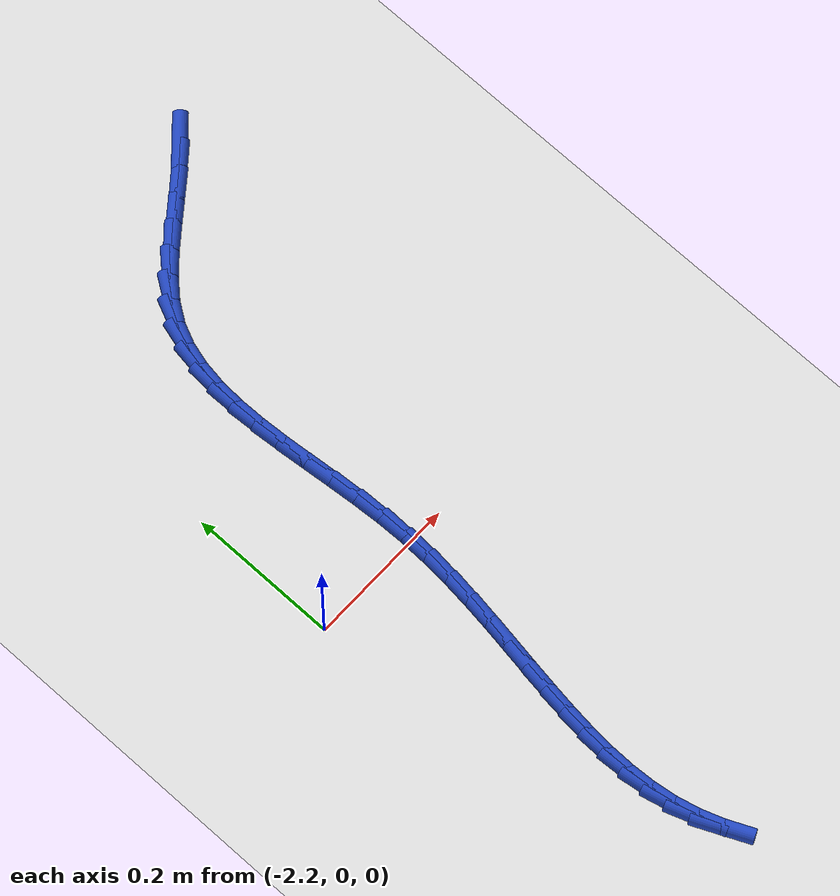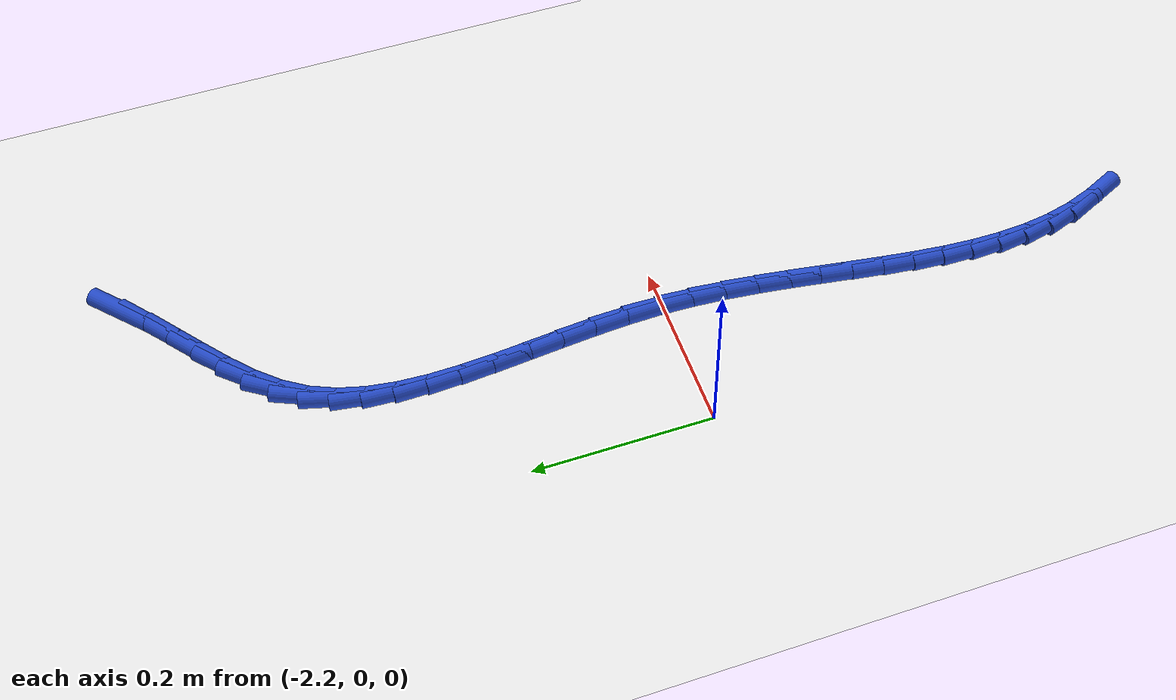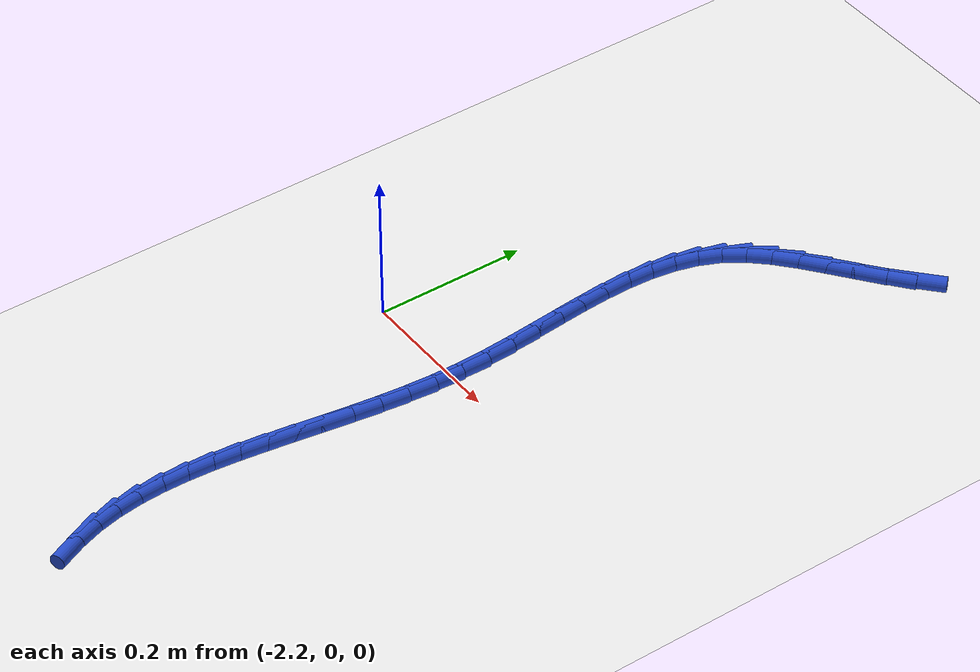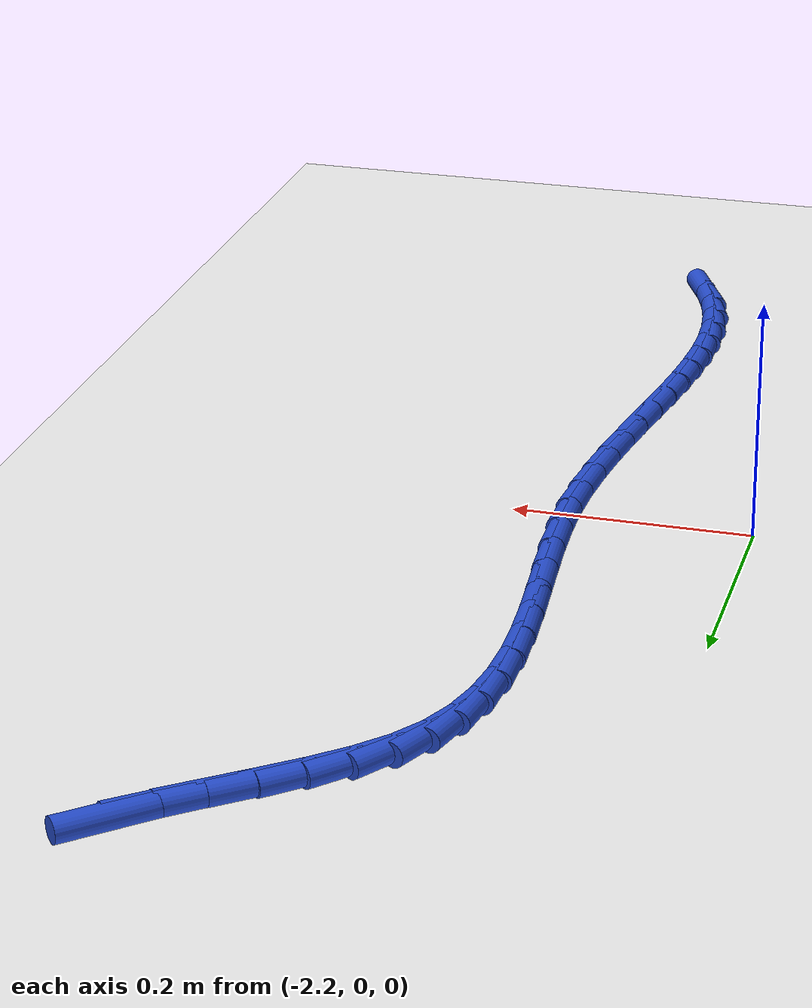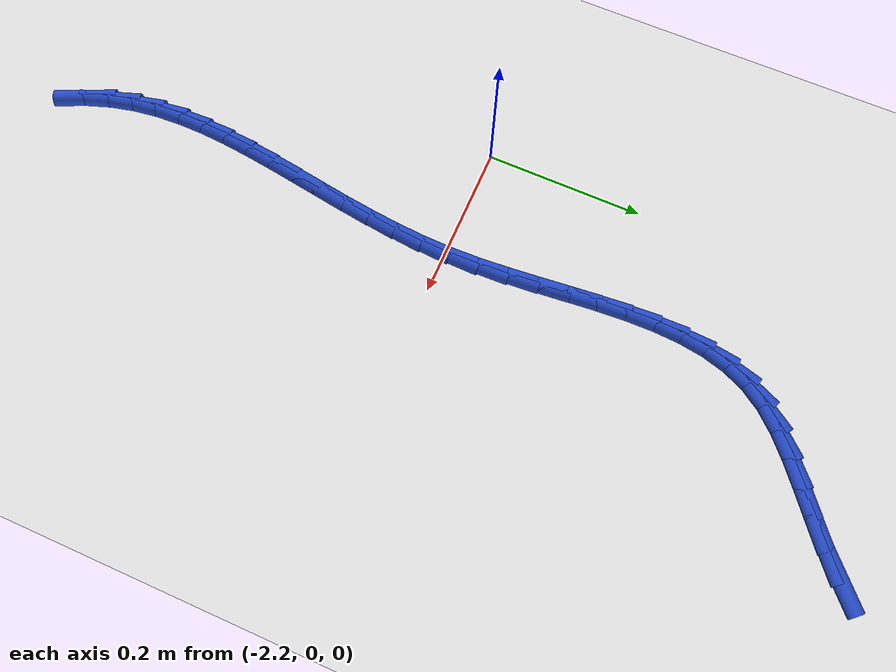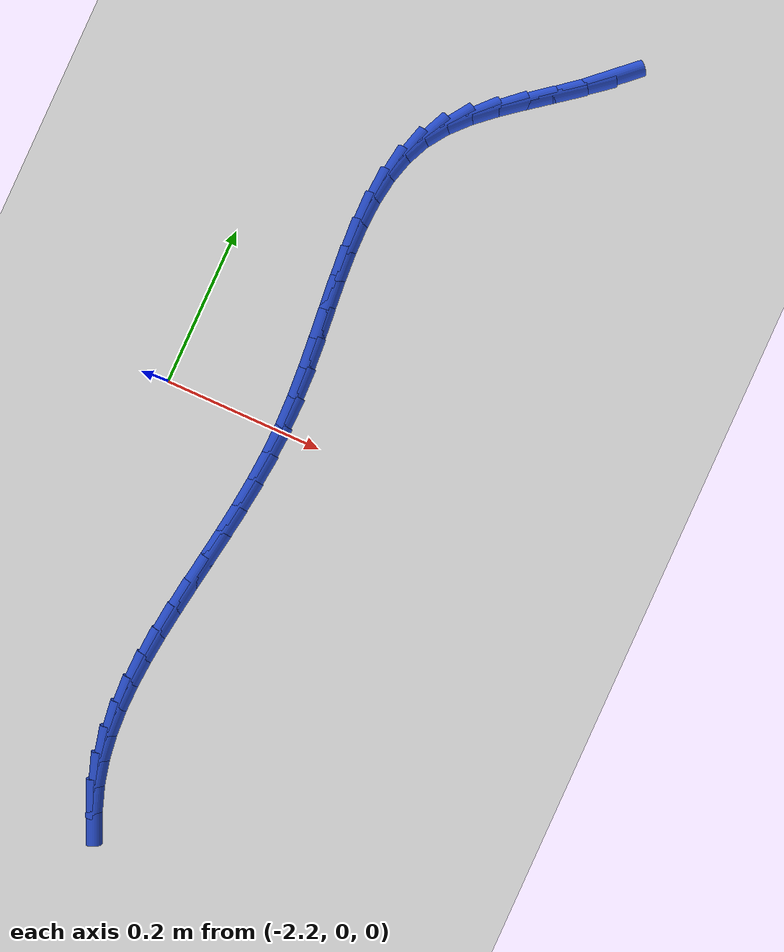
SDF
<sdf version="1.6">
 <world name="default">
  <model name="ground_plane">
   <static>1</static>
   <link name="link">
    <collision name="collision">
     <geometry><plane><normal>0 0 1</normal><size>100 100</size></plane></geometry>
     <surface><friction><ode><mu>100</mu><mu2>50</mu2></ode></friction></surface>
    </collision>
    <visual name="visual">
     <cast_shadows>0</cast_shadows>
     <geometry><plane><normal>0 0 1</normal><size>100 100</size></plane></geometry>
     <material>
      <script><uri>file://media/materials/scripts/gazebo.material</uri><name>Gazebo/WhiteGlow</name></script>
     </material>
    </visual>
   </link>
  </model>
  <model name="line">
   <link name="link_83">
    <pose>-1.862297077558162 0.5551645672458527 0.01 0 1.57 0.736324770996962</pose>
    <collision name="collision">
     <geometry><cylinder><radius>0.01</radius><length>0.08</length></cylinder></geometry>
    </collision>
    <visual name="visual">
     <material>
      <script><name>Gazebo/Blue</name><uri>file://media/materials/scripts/gazebo.material</uri></script>
     </material>
     <geometry><cylinder><radius>0.01</radius><length>0.08</length></cylinder></geometry>
    </visual>
   </link>
   <link name="link_84">
    <pose>-1.8892484745143812 0.5307365579831942 0.01 0 1.57 0.6785800644903094</pose>
    <collision name="collision">
     <geometry><cylinder><radius>0.01</radius><length>0.08</length></cylinder></geometry>
    </collision>
    <visual name="visual">
     <material>
      <script><name>Gazebo/Blue</name><uri>file://media/materials/scripts/gazebo.material</uri></script>
     </material>
     <geometry><cylinder><radius>0.01</radius><length>0.08</length></cylinder></geometry>
    </visual>
   </link>
   <link name="link_85">
    <pose>-1.9175209485142364 0.5079400214688465 0.01 0 1.57 0.6563256951702247</pose>
    <collision name="collision">
     <geometry><cylinder><radius>0.01</radius><length>0.08</length></cylinder></geometry>
    </collision>
    <visual name="visual">
     <material>
      <script><name>Gazebo/Blue</name><uri>file://media/materials/scripts/gazebo.material</uri></script>
     </material>
     <geometry><cylinder><radius>0.01</radius><length>0.08</length></cylinder></geometry>
    </visual>
   </link>
   <link name="link_86">
    <pose>-1.945959106898136 0.4860359808194489 0.01 0 1.57 0.6700978612645064</pose>
    <collision name="collision">
     <geometry><cylinder><radius>0.01</radius><length>0.08</length></cylinder></geometry>
    </collision>
    <visual name="visual">
     <material>
      <script><name>Gazebo/Blue</name><uri>file://media/materials/scripts/gazebo.material</uri></script>
     </material>
     <geometry><cylinder><radius>0.01</radius><length>0.08</length></cylinder></geometry>
    </visual>
   </link>
   <link name="link_87">
    <pose>-1.9734075570064906 0.46428545915164 0.01 0 1.57 0.7231902992890544</pose>
    <collision name="collision">
     <geometry><cylinder><radius>0.01</radius><length>0.08</length></cylinder></geometry>
    </collision>
    <visual name="visual">
     <material>
      <script><name>Gazebo/Blue</name><uri>file://media/materials/scripts/gazebo.material</uri></script>
     </material>
     <geometry><cylinder><radius>0.01</radius><length>0.08</length></cylinder></geometry>
    </visual>
   </link>
   <link name="link_88">
    <pose>-1.9987109061797115 0.4419494795820591 0.01 0 1.57 0.8216818399691129</pose>
    <collision name="collision">
     <geometry><cylinder><radius>0.01</radius><length>0.08</length></cylinder></geometry>
    </collision>
    <visual name="visual">
     <material>
      <script><name>Gazebo/Blue</name><uri>file://media/materials/scripts/gazebo.material</uri></script>
     </material>
     <geometry><cylinder><radius>0.01</radius><length>0.08</length></cylinder></geometry>
    </visual>
   </link>
   <link name="link_89">
    <pose>-2.0207137617582074 0.4182890652273446 0.01 0 1.57 0.9715307264322418</pose>
    <collision name="collision">
     <geometry><cylinder><radius>0.01</radius><length>0.08</length></cylinder></geometry>
    </collision>
    <visual name="visual">
     <material>
      <script><name>Gazebo/Blue</name><uri>file://media/materials/scripts/gazebo.material</uri></script>
     </material>
     <geometry><cylinder><radius>0.01</radius><length>0.08</length></cylinder></geometry>
    </visual>
   </link>
   <link name="link_90">
    <pose>-2.0382780981422046 0.3925748432527212 0.01 0 1.57 1.1456842950751396</pose>
    <collision name="collision">
     <geometry><cylinder><radius>0.01</radius><length>0.08</length></cylinder></geometry>
    </collision>
    <visual name="visual">
     <material>
      <script><name>Gazebo/Blue</name><uri>file://media/materials/scripts/gazebo.material</uri></script>
     </material>
     <geometry><cylinder><radius>0.01</radius><length>0.08</length></cylinder></geometry>
    </visual>
   </link>
   <link name="link_91">
    <pose>-2.050996481868322 0.364481460988549 0.01 0 1.57 1.2985184659425524</pose>
    <collision name="collision">
     <geometry><cylinder><radius>0.01</radius><length>0.08</length></cylinder></geometry>
    </collision>
    <visual name="visual">
     <material>
      <script><name>Gazebo/Blue</name><uri>file://media/materials/scripts/gazebo.material</uri></script>
     </material>
     <geometry><cylinder><radius>0.01</radius><length>0.08</length></cylinder></geometry>
    </visual>
   </link>
   <link name="link_92">
    <pose>-2.059443929028173 0.3342268640183029 0.01 0 1.57 1.4220064655590927</pose>
    <collision name="collision">
     <geometry><cylinder><radius>0.01</radius><length>0.08</length></cylinder></geometry>
    </collision>
    <visual name="visual">
     <material>
      <script><name>Gazebo/Blue</name><uri>file://media/materials/scripts/gazebo.material</uri></script>
     </material>
     <geometry><cylinder><radius>0.01</radius><length>0.08</length></cylinder></geometry>
    </visual>
   </link>
   <link name="link_93">
    <pose>-2.0642645836291287 0.3020672259196432 0.01 0 1.57 1.51648459575073</pose>
    <collision name="collision">
     <geometry><cylinder><radius>0.01</radius><length>0.08</length></cylinder></geometry>
    </collision>
    <visual name="visual">
     <material>
      <script><name>Gazebo/Blue</name><uri>file://media/materials/scripts/gazebo.material</uri></script>
     </material>
     <geometry><cylinder><radius>0.01</radius><length>0.08</length></cylinder></geometry>
    </visual>
   </link>
   <link name="link_94">
    <pose>-2.0661025896785623 0.2682587202702296 0.01 0 1.57 -1.5565790621105813</pose>
    <collision name="collision">
     <geometry><cylinder><radius>0.01</radius><length>0.08</length></cylinder></geometry>
    </collision>
    <visual name="visual">
     <material>
      <script><name>Gazebo/Blue</name><uri>file://media/materials/scripts/gazebo.material</uri></script>
     </material>
     <geometry><cylinder><radius>0.01</radius><length>0.08</length></cylinder></geometry>
    </visual>
   </link>
   <link name="link_95">
    <pose>-2.0656020911838464 0.23305752064772264 0.01 0 1.57 -1.510467950529083</pose>
    <collision name="collision">
     <geometry><cylinder><radius>0.01</radius><length>0.08</length></cylinder></geometry>
    </collision>
    <visual name="visual">
     <material>
      <script><name>Gazebo/Blue</name><uri>file://media/materials/scripts/gazebo.material</uri></script>
     </material>
     <geometry><cylinder><radius>0.01</radius><length>0.08</length></cylinder></geometry>
    </visual>
   </link>
   <link name="link_96">
    <pose>-2.063407232152353 0.19671980062978223 0.01 0 1.57 -1.4838254050434816</pose>
    <collision name="collision">
     <geometry><cylinder><radius>0.01</radius><length>0.08</length></cylinder></geometry>
    </collision>
    <visual name="visual">
     <material>
      <script><name>Gazebo/Blue</name><uri>file://media/materials/scripts/gazebo.material</uri></script>
     </material>
     <geometry><cylinder><radius>0.01</radius><length>0.08</length></cylinder></geometry>
    </visual>
   </link>
   <link name="link_97">
    <pose>-2.0601621565914567 0.15950173379406787 0.01 0 1.57 -1.4746106525663139</pose>
    <collision name="collision">
     <geometry><cylinder><radius>0.01</radius><length>0.08</length></cylinder></geometry>
    </collision>
    <visual name="visual">
     <material>
      <script><name>Gazebo/Blue</name><uri>file://media/materials/scripts/gazebo.material</uri></script>
     </material>
     <geometry><cylinder><radius>0.01</radius><length>0.08</length></cylinder></geometry>
    </visual>
   </link>
   <link name="link_98">
    <pose>-2.056511008508527 0.12165949371823981 0.01 0 1.57 -1.4817091471118198</pose>
    <collision name="collision">
     <geometry><cylinder><radius>0.01</radius><length>0.08</length></cylinder></geometry>
    </collision>
    <visual name="visual">
     <material>
      <script><name>Gazebo/Blue</name><uri>file://media/materials/scripts/gazebo.material</uri></script>
     </material>
     <geometry><cylinder><radius>0.01</radius><length>0.08</length></cylinder></geometry>
    </visual>
   </link>
   <link name="link_99">
    <pose>-2.0530979319109397 0.08344925397995828 0.01 0 1.57 -1.504850215211497</pose>
    <collision name="collision">
     <geometry><cylinder><radius>0.01</radius><length>0.08</length></cylinder></geometry>
    </collision>
    <visual name="visual">
     <material>
      <script><name>Gazebo/Blue</name><uri>file://media/materials/scripts/gazebo.material</uri></script>
     </material>
     <geometry><cylinder><radius>0.01</radius><length>0.08</length></cylinder></geometry>
    </visual>
   </link>
   <link name="link_100">
    <pose>-2.0505670708060664 0.04512718815688314 0.01 0 1.57 -1.5444906402685104</pose>
    <collision name="collision">
     <geometry><cylinder><radius>0.01</radius><length>0.08</length></cylinder></geometry>
    </collision>
    <visual name="visual">
     <material>
      <script><name>Gazebo/Blue</name><uri>file://media/materials/scripts/gazebo.material</uri></script>
     </material>
     <geometry><cylinder><radius>0.01</radius><length>0.08</length></cylinder></geometry>
    </visual>
   </link>
   <link name="link_101">
    <pose>-2.0495625478691446 0.006949464914336723 0.01 0 1.57 1.545269793563681</pose>
    <collision name="collision">
     <geometry><cylinder><radius>0.01</radius><length>0.08</length></cylinder></geometry>
    </collision>
    <visual name="visual">
     <material>
      <script><name>Gazebo/Blue</name><uri>file://media/materials/scripts/gazebo.material</uri></script>
     </material>
     <geometry><cylinder><radius>0.01</radius><length>0.08</length></cylinder></geometry>
    </visual>
   </link>
   <link name="link_102">
    <pose>-2.050528255883832 -0.03087385577687296 0.01 0 1.57 1.4990367651107028</pose>
    <collision name="collision">
     <geometry><cylinder><radius>0.01</radius><length>0.08</length></cylinder></geometry>
    </collision>
    <visual name="visual">
     <material>
      <script><name>Gazebo/Blue</name><uri>file://media/materials/scripts/gazebo.material</uri></script>
     </material>
     <geometry><cylinder><radius>0.01</radius><length>0.08</length></cylinder></geometry>
    </visual>
   </link>
   <link name="link_103">
    <pose>-2.0532179578065834 -0.06829163619838557 0.01 0 1.57 1.4625884469902262</pose>
    <collision name="collision">
     <geometry><cylinder><radius>0.01</radius><length>0.08</length></cylinder></geometry>
    </collision>
    <visual name="visual">
     <material>
      <script><name>Gazebo/Blue</name><uri>file://media/materials/scripts/gazebo.material</uri></script>
     </material>
     <geometry><cylinder><radius>0.01</radius><length>0.08</length></cylinder></geometry>
    </visual>
   </link>
   <link name="link_104">
    <pose>-2.057236840436966 -0.1052869525675123 0.01 0 1.57 1.4361186808803428</pose>
    <collision name="collision">
     <geometry><cylinder><radius>0.01</radius><length>0.08</length></cylinder></geometry>
    </collision>
    <visual name="visual">
     <material>
      <script><name>Gazebo/Blue</name><uri>file://media/materials/scripts/gazebo.material</uri></script>
     </material>
     <geometry><cylinder><radius>0.01</radius><length>0.08</length></cylinder></geometry>
    </visual>
   </link>
   <link name="link_105">
    <pose>-2.062190090574546 -0.14184288110156426 0.01 0 1.57 1.4197976486414414</pose>
    <collision name="collision">
     <geometry><cylinder><radius>0.01</radius><length>0.08</length></cylinder></geometry>
    </collision>
    <visual name="visual">
     <material>
      <script><name>Gazebo/Blue</name><uri>file://media/materials/scripts/gazebo.material</uri></script>
     </material>
     <geometry><cylinder><radius>0.01</radius><length>0.08</length></cylinder></geometry>
    </visual>
   </link>
   <link name="link_106">
    <pose>-2.067682895018892 -0.1779424980178526 0.01 0 1.57 1.413856865179107</pose>
    <collision name="collision">
     <geometry><cylinder><radius>0.01</radius><length>0.08</length></cylinder></geometry>
    </collision>
    <visual name="visual">
     <material>
      <script><name>Gazebo/Blue</name><uri>file://media/materials/scripts/gazebo.material</uri></script>
     </material>
     <geometry><cylinder><radius>0.01</radius><length>0.08</length></cylinder></geometry>
    </visual>
   </link>
   <link name="link_107">
    <pose>-2.0733204405695673 -0.21356887953368836 0.01 0 1.57 1.4186502425552234</pose>
    <collision name="collision">
     <geometry><cylinder><radius>0.01</radius><length>0.08</length></cylinder></geometry>
    </collision>
    <visual name="visual">
     <material>
      <script><name>Gazebo/Blue</name><uri>file://media/materials/scripts/gazebo.material</uri></script>
     </material>
     <geometry><cylinder><radius>0.01</radius><length>0.08</length></cylinder></geometry>
    </visual>
   </link>
   <link name="link_108">
    <pose>-2.0787079140261415 -0.24870510186638276 0.01 0 1.57 1.4346893840138295</pose>
    <collision name="collision">
     <geometry><cylinder><radius>0.01</radius><length>0.08</length></cylinder></geometry>
    </collision>
    <visual name="visual">
     <material>
      <script><name>Gazebo/Blue</name><uri>file://media/materials/scripts/gazebo.material</uri></script>
     </material>
     <geometry><cylinder><radius>0.01</radius><length>0.08</length></cylinder></geometry>
    </visual>
   </link>
   <link name="link_109">
    <pose>-2.083450502188181 -0.2833342412332469 0.01 0 1.57 1.4626471573845734</pose>
    <collision name="collision">
     <geometry><cylinder><radius>0.01</radius><length>0.08</length></cylinder></geometry>
    </collision>
    <visual name="visual">
     <material>
      <script><name>Gazebo/Blue</name><uri>file://media/materials/scripts/gazebo.material</uri></script>
     </material>
     <geometry><cylinder><radius>0.01</radius><length>0.08</length></cylinder></geometry>
    </visual>
   </link>
   <link name="link_110">
    <pose>-2.087153391855252 -0.31743937385159193 0.01 0 1.57 1.5033156878368898</pose>
    <collision name="collision">
     <geometry><cylinder><radius>0.01</radius><length>0.08</length></cylinder></geometry>
    </collision>
    <visual name="visual">
     <material>
      <script><name>Gazebo/Blue</name><uri>file://media/materials/scripts/gazebo.material</uri></script>
     </material>
     <geometry><cylinder><radius>0.01</radius><length>0.08</length></cylinder></geometry>
    </visual>
   </link>
   <link name="link_111">
    <pose>-2.0894217698269206 -0.35100357593872883 0.01 0 1.57 1.5574950313753122</pose>
    <collision name="collision">
     <geometry><cylinder><radius>0.01</radius><length>0.08</length></cylinder></geometry>
    </collision>
    <visual name="visual">
     <material>
      <script><name>Gazebo/Blue</name><uri>file://media/materials/scripts/gazebo.material</uri></script>
     </material>
     <geometry><cylinder><radius>0.01</radius><length>0.08</length></cylinder></geometry>
    </visual>
   </link>
   <link name="link_112">
    <pose>-2.0898608229027555 -0.38400992371196907 0.01 0 1.57 -1.5158102245405074</pose>
    <collision name="collision">
     <geometry><cylinder><radius>0.01</radius><length>0.08</length></cylinder></geometry>
    </collision>
    <visual name="visual">
     <material>
      <script><name>Gazebo/Blue</name><uri>file://media/materials/scripts/gazebo.material</uri></script>
     </material>
     <geometry><cylinder><radius>0.01</radius><length>0.08</length></cylinder></geometry>
    </visual>
   </link>
   <link name="link_113">
    <pose>-2.088075737882322 -0.41644149338862335 0.01 0 1.57 -1.4333501391879748</pose>
    <collision name="collision">
     <geometry><cylinder><radius>0.01</radius><length>0.08</length></cylinder></geometry>
    </collision>
    <visual name="visual">
     <material>
      <script><name>Gazebo/Blue</name><uri>file://media/materials/scripts/gazebo.material</uri></script>
     </material>
     <geometry><cylinder><radius>0.01</radius><length>0.08</length></cylinder></geometry>
    </visual>
   </link>
   <link name="link_114">
    <pose>-2.0836717015651867 -0.44828136118600304 0.01 0 1.57 -1.3376049840798638</pose>
    <collision name="collision">
     <geometry><cylinder><radius>0.01</radius><length>0.08</length></cylinder></geometry>
    </collision>
    <visual name="visual">
     <material>
      <script><name>Gazebo/Blue</name><uri>file://media/materials/scripts/gazebo.material</uri></script>
     </material>
     <geometry><cylinder><radius>0.01</radius><length>0.08</length></cylinder></geometry>
    </visual>
   </link>
   <link name="link_115">
    <pose>-2.076253900750917 -0.47951260332141926 0.01 0 1.57 -1.234281166991352</pose>
    <collision name="collision">
     <geometry><cylinder><radius>0.01</radius><length>0.08</length></cylinder></geometry>
    </collision>
    <visual name="visual">
     <material>
      <script><name>Gazebo/Blue</name><uri>file://media/materials/scripts/gazebo.material</uri></script>
     </material>
     <geometry><cylinder><radius>0.01</radius><length>0.08</length></cylinder></geometry>
    </visual>
   </link>
   <link name="link_116">
    <pose>-2.0655401680501537 -0.5101389495586149 0.01 0 1.57 -1.143723906492555</pose>
    <collision name="collision">
     <geometry><cylinder><radius>0.01</radius><length>0.08</length></cylinder></geometry>
    </collision>
    <visual name="visual">
     <material>
      <script><name>Gazebo/Blue</name><uri>file://media/materials/scripts/gazebo.material</uri></script>
     </material>
     <geometry><cylinder><radius>0.01</radius><length>0.08</length></cylinder></geometry>
    </visual>
   </link>
  </model>
 </world>
</sdf>
